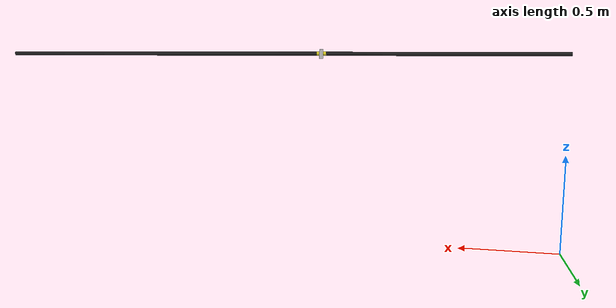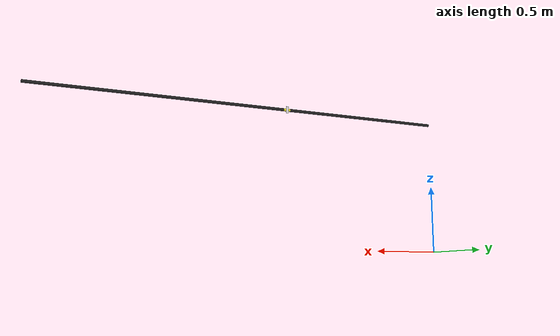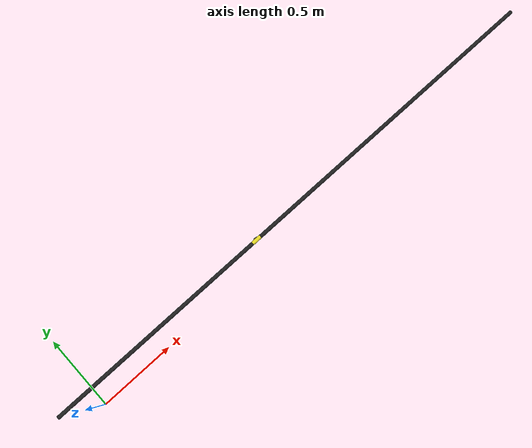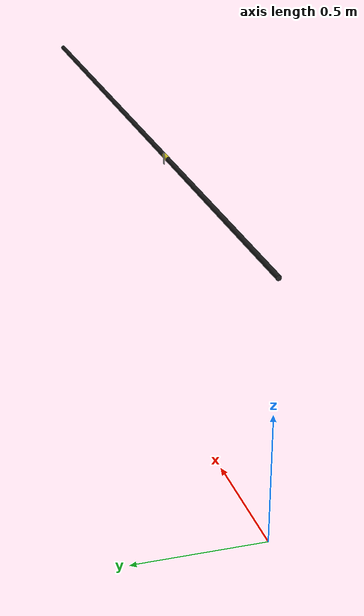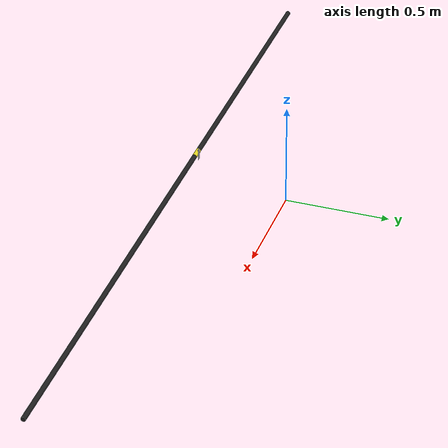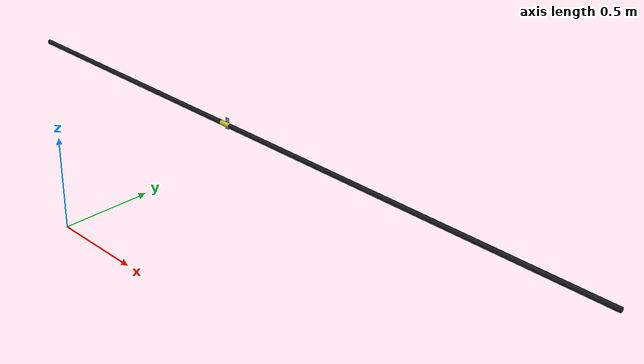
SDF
<?xml version="1.0"?>
<sdf version="1.5">
  <model name="rope">
    <static>true</static>
    <!-- First black segment (0 to 1.2m) -->
    <link name="black_segment1">
      <visual name="visual">
        <pose>0.6 0 1.0 0 1.5708 0</pose>
        <geometry>
          <cylinder>
            <radius>0.01</radius>
            <length>1.2</length>
          </cylinder>
        </geometry>
        <material>
          <script>
            <uri>file://media/materials/scripts/gazebo.material</uri>
            <name>Gazebo/Black</name>
          </script>
        </material>
      </visual>
    </link>

    <!-- Yellow segment with marker (1.2m to 1.25m) -->
    <link name="yellow_segment">
      <visual name="yellow_visual">
        <pose>1.225 0 1.0 0 1.5708 0</pose>
        <geometry>
          <cylinder>
            <radius>0.01</radius>
            <length>0.05</length>
          </cylinder>
        </geometry>
        <material>
          <script>
            <uri>file://media/materials/scripts/gazebo.material</uri>
            <name>Gazebo/Yellow</name>
          </script>
        </material>
      </visual>
      <!-- Marker on yellow segment -->
      <visual name="marker_visual">
        <pose>1.225 0.01 1.0 0 1.5708 0</pose>
        <geometry>
          <box>
            <size>0.05 0.0001 0.02</size>
          </box>
        </geometry>
        <material>
          <script>
            <uri>model://rope/materials/scripts/rope_marker.material</uri>
            <name>RopeMarker</name>
          </script>
        </material>
      </visual>
    </link>

    <!-- Second black segment (1.25m to 3m) -->
    <link name="black_segment2">
      <visual name="visual">
        <pose>2.125 0 1.0 0 1.5708 0</pose>
        <geometry>
          <cylinder>
            <radius>0.01</radius>
            <length>1.75</length>
          </cylinder>
        </geometry>
        <material>
          <script>
            <uri>file://media/materials/scripts/gazebo.material</uri>
            <name>Gazebo/Black</name>
          </script>
        </material>
      </visual>
    </link>
  </model>
</sdf>
